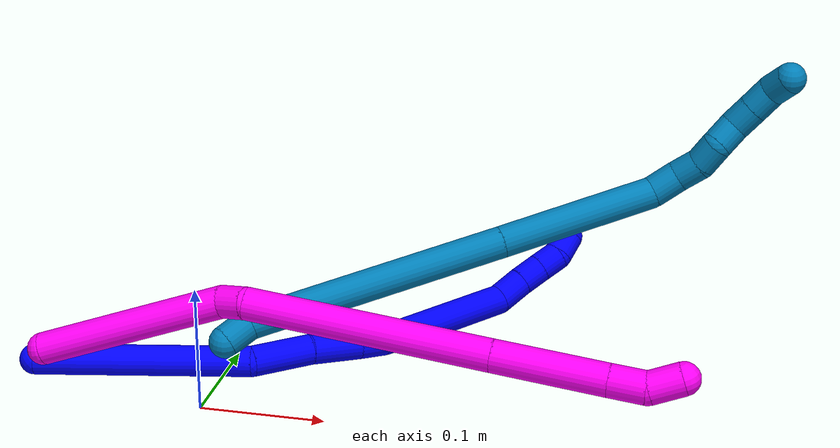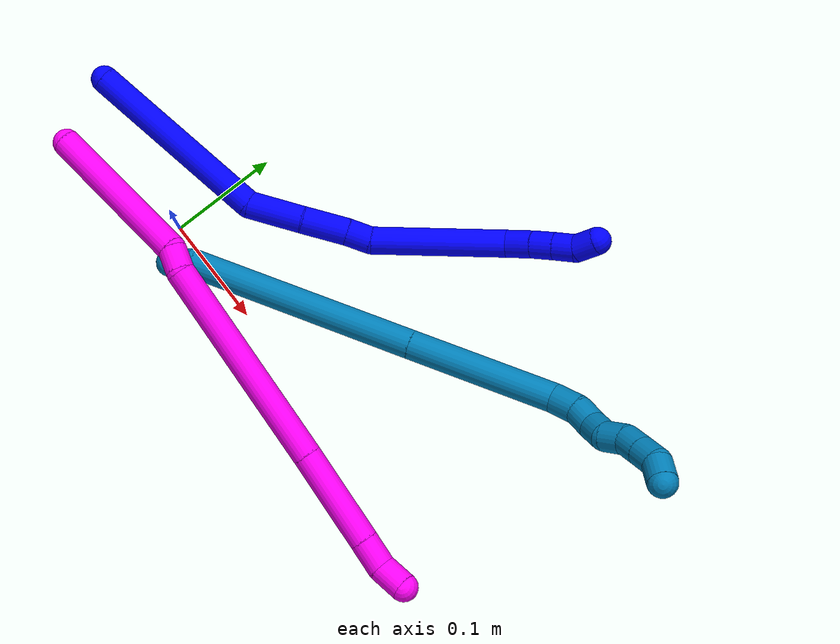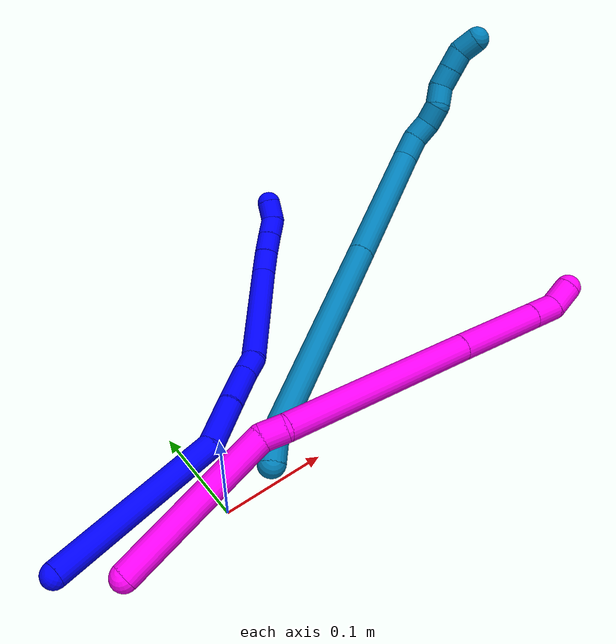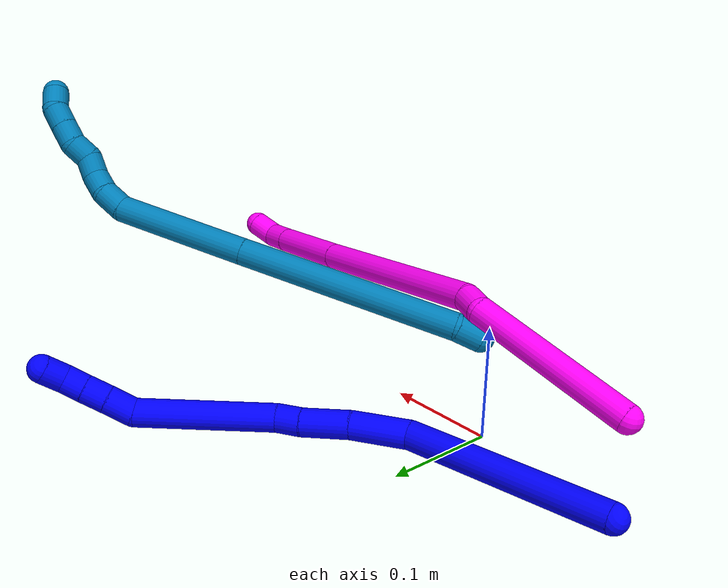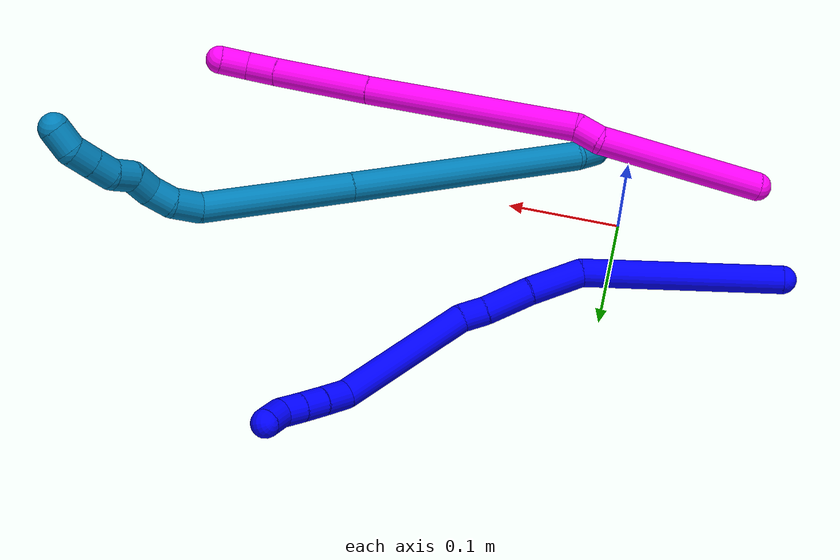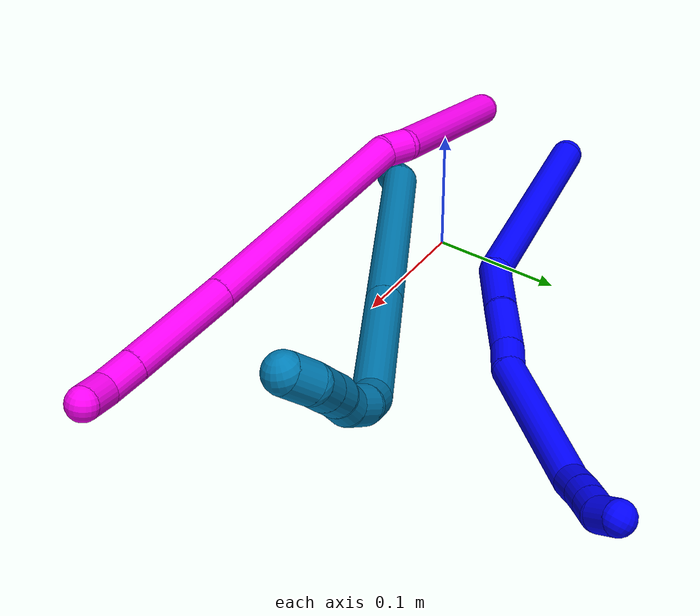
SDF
<sdf version="1.7">
 <world name="default">
  <model name="photoneo_s_sensor">
   <static>1</static>
   <pose>0 0 2 1.57079 1.57079 3.14159</pose>
   <link name="link">
    <inertial><mass>0.1</mass></inertial>
    <sensor name="sensor" type="depth">
     <update_rate>30</update_rate>
     <camera>
      <horizontal_fov>1.22</horizontal_fov>
      <image><width>1920</width><height>1200</height><format>B8G8R8</format></image>
      <clip><near>0.1</near><far>2</far></clip>
      <depth_camera><output>points</output></depth_camera>
     </camera>
     <plugin name="camera_plugin" filename="libgazebo_ros_depth_camera.so">
      <baseline>0.2</baseline>
      <alwaysOn>1</alwaysOn>
      <updateRate>0.0</updateRate>
      <cameraName>camera_ir</cameraName>
      <imageTopicName>/camera/color/image_raw</imageTopicName>
      <cameraInfoTopicName>/camera/color/camera_info</cameraInfoTopicName>
      <depthImageTopicName>/camera/depth/image_raw</depthImageTopicName>
      <depthImageCameraInfoTopicName>/camera/depth/camera_info</depthImageCameraInfoTopicName>
      <pointCloudTopicName>/camera/depth/points</pointCloudTopicName>
      <frameName>fr_optical</frameName>
      <pointCloudCutoff>0.1</pointCloudCutoff>
      <pointCloudCutoffMax>2.0</pointCloudCutoffMax>
      <distortionK1>0</distortionK1>
      <distortionK2>0</distortionK2>
      <distortionK3>0</distortionK3>
      <distortionT1>0</distortionT1>
      <distortionT2>0</distortionT2>
      <CxPrime>0</CxPrime>
      <Cx>0</Cx>
      <Cy>0</Cy>
      <focalLength>0</focalLength>
      <hackBaseline>0</hackBaseline>
     </plugin>
    </sensor>
   </link>
  </model>
  <model name="bin">
   <static>1</static>
   <link name="bottom">
    <collision name="collision-bottom">
     <pose>0 0 -0.01 0 -0 0</pose>
     <geometry><box><size>0.8 0.6 0.02</size></box></geometry>
     <surface>
      <friction><ode><mu>100</mu><mu2>100</mu2></ode></friction>
      <contact><collide_bitmask>65535</collide_bitmask></contact>
     </surface>
    </collision>
   </link>
   <link name="west_wall">
    <collision name="collision-west_wall">
     <pose>-0.41 0 0.1 0 -0 0</pose>
     <geometry><box><size>0.02 0.6 0.2</size></box></geometry>
     <surface>
      <friction><ode><mu>100</mu><mu2>100</mu2></ode></friction>
      <contact><collide_bitmask>65535</collide_bitmask></contact>
     </surface>
    </collision>
   </link>
   <link name="east_wall">
    <collision name="collision-east_wall">
     <pose>0.41 0 0.1 0 -0 0</pose>
     <geometry><box><size>0.02 0.6 0.2</size></box></geometry>
     <surface>
      <friction><ode><mu>100</mu><mu2>100</mu2></ode></friction>
      <contact><collide_bitmask>65535</collide_bitmask></contact>
     </surface>
    </collision>
   </link>
   <link name="south_wall">
    <collision name="collision-south_wall">
     <pose>0 -0.31 0.1 0 -0 0</pose>
     <geometry><box><size>0.8 0.02 0.2</size></box></geometry>
     <surface>
      <friction><ode><mu>100</mu><mu2>100</mu2></ode></friction>
      <contact><collide_bitmask>65535</collide_bitmask></contact>
     </surface>
    </collision>
   </link>
   <link name="north_wall">
    <collision name="collision-north_wall">
     <pose>0 0.31 0.1 0 -0 0</pose>
     <geometry><box><size>0.8 0.02 0.2</size></box></geometry>
     <surface>
      <friction><ode><mu>100</mu><mu2>100</mu2></ode></friction>
      <contact><collide_bitmask>65535</collide_bitmask></contact>
     </surface>
    </collision>
   </link>
  </model>
  <model name="1">
   <static>0</static>
   <link name="1">
    <collision name="collision-cylinder-e_1_1_4">
     <pose>0.042503 0.049941 0.058399 -0.707487 0.505242 -0.190072</pose>
     <geometry><cylinder><radius>0.0125</radius><length>0.175625</length></cylinder></geometry>
     <surface>
      <friction><ode><mu>1.16</mu><mu2>1.16</mu2><slip1>0</slip1><slip2>0</slip2></ode></friction>
      <contact><ode><kp>1e+06</kp><kd>1</kd><max_vel>0</max_vel><min_depth>0.001</min_depth></ode></contact>
     </surface>
    </collision>
    <visual name="visual-cylinder-e_1_1_4">
     <pose>0.042503 0.049941 0.058399 -0.707487 0.505242 -0.190072</pose>
     <geometry><cylinder><radius>0.0125</radius><length>0.175625</length></cylinder></geometry>
     <material><ambient>0 0 1 1</ambient></material>
    </visual>
    <collision name="collision-cylinder-e_2_4_5">
     <pose>0.105161 0.108243 0.129117 -0.596309 0.934554 -0.307659</pose>
     <geometry><cylinder><radius>0.0125</radius><length>0.050116</length></cylinder></geometry>
     <surface>
      <friction><ode><mu>1.16</mu><mu2>1.16</mu2><slip1>0</slip1><slip2>0</slip2></ode></friction>
      <contact><ode><kp>1e+06</kp><kd>1</kd><max_vel>0</max_vel><min_depth>0.001</min_depth></ode></contact>
     </surface>
    </collision>
    <visual name="visual-cylinder-e_2_4_5">
     <pose>0.105161 0.108243 0.129117 -0.596309 0.934554 -0.307659</pose>
     <geometry><cylinder><radius>0.0125</radius><length>0.050116</length></cylinder></geometry>
     <material><ambient>0 0 1 1</ambient></material>
    </visual>
    <collision name="collision-cylinder-e_3_5_6">
     <pose>0.142167 0.121653 0.153163 -0.406555 0.922423 -0.204158</pose>
     <geometry><cylinder><radius>0.0125</radius><length>0.042284</length></cylinder></geometry>
     <surface>
      <friction><ode><mu>1.16</mu><mu2>1.16</mu2><slip1>0</slip1><slip2>0</slip2></ode></friction>
      <contact><ode><kp>1e+06</kp><kd>1</kd><max_vel>0</max_vel><min_depth>0.001</min_depth></ode></contact>
     </surface>
    </collision>
    <visual name="visual-cylinder-e_3_5_6">
     <pose>0.142167 0.121653 0.153163 -0.406555 0.922423 -0.204158</pose>
     <geometry><cylinder><radius>0.0125</radius><length>0.042284</length></cylinder></geometry>
     <material><ambient>0 0 1 1</ambient></material>
    </visual>
    <collision name="collision-cylinder-e_4_6_7">
     <pose>0.167612 0.130767 0.171015 -0.585884 0.86318 -0.276053</pose>
     <geometry><cylinder><radius>0.0125</radius><length>0.022617</length></cylinder></geometry>
     <surface>
      <friction><ode><mu>1.16</mu><mu2>1.16</mu2><slip1>0</slip1><slip2>0</slip2></ode></friction>
      <contact><ode><kp>1e+06</kp><kd>1</kd><max_vel>0</max_vel><min_depth>0.001</min_depth></ode></contact>
     </surface>
    </collision>
    <visual name="visual-cylinder-e_4_6_7">
     <pose>0.167612 0.130767 0.171015 -0.585884 0.86318 -0.276053</pose>
     <geometry><cylinder><radius>0.0125</radius><length>0.022617</length></cylinder></geometry>
     <material><ambient>0 0 1 1</ambient></material>
    </visual>
    <collision name="collision-cylinder-e_5_7_8">
     <pose>0.232506 0.144296 0.198725 -0.41324 1.17433 -0.277187</pose>
     <geometry><cylinder><radius>0.0125</radius><length>0.12207</length></cylinder></geometry>
     <surface>
      <friction><ode><mu>1.16</mu><mu2>1.16</mu2><slip1>0</slip1><slip2>0</slip2></ode></friction>
      <contact><ode><kp>1e+06</kp><kd>1</kd><max_vel>0</max_vel><min_depth>0.001</min_depth></ode></contact>
     </surface>
    </collision>
    <visual name="visual-cylinder-e_5_7_8">
     <pose>0.232506 0.144296 0.198725 -0.41324 1.17433 -0.277187</pose>
     <geometry><cylinder><radius>0.0125</radius><length>0.12207</length></cylinder></geometry>
     <material><ambient>0 0 1 1</ambient></material>
    </visual>
    <collision name="collision-cylinder-e_6_8_9">
     <pose>0.299891 0.159806 0.221074 -1.44499 1.0682 -0.961157</pose>
     <geometry><cylinder><radius>0.0125</radius><length>0.025297</length></cylinder></geometry>
     <surface>
      <friction><ode><mu>1.16</mu><mu2>1.16</mu2><slip1>0</slip1><slip2>0</slip2></ode></friction>
      <contact><ode><kp>1e+06</kp><kd>1</kd><max_vel>0</max_vel><min_depth>0.001</min_depth></ode></contact>
     </surface>
    </collision>
    <visual name="visual-cylinder-e_6_8_9">
     <pose>0.299891 0.159806 0.221074 -1.44499 1.0682 -0.961157</pose>
     <geometry><cylinder><radius>0.0125</radius><length>0.025297</length></cylinder></geometry>
     <material><ambient>0 0 1 1</ambient></material>
    </visual>
    <collision name="collision-cylinder-e_7_9_10">
     <pose>0.320028 0.170877 0.223045 -1.33529 1.05195 -0.858476</pose>
     <geometry><cylinder><radius>0.0125</radius><length>0.020848</length></cylinder></geometry>
     <surface>
      <friction><ode><mu>1.16</mu><mu2>1.16</mu2><slip1>0</slip1><slip2>0</slip2></ode></friction>
      <contact><ode><kp>1e+06</kp><kd>1</kd><max_vel>0</max_vel><min_depth>0.001</min_depth></ode></contact>
     </surface>
    </collision>
    <visual name="visual-cylinder-e_7_9_10">
     <pose>0.320028 0.170877 0.223045 -1.33529 1.05195 -0.858476</pose>
     <geometry><cylinder><radius>0.0125</radius><length>0.020848</length></cylinder></geometry>
     <material><ambient>0 0 1 1</ambient></material>
    </visual>
    <collision name="collision-cylinder-e_8_10_11">
     <pose>0.337693 0.180948 0.225523 -1.32376 1.02748 -0.828411</pose>
     <geometry><cylinder><radius>0.0125</radius><length>0.020125</length></cylinder></geometry>
     <surface>
      <friction><ode><mu>1.16</mu><mu2>1.16</mu2><slip1>0</slip1><slip2>0</slip2></ode></friction>
      <contact><ode><kp>1e+06</kp><kd>1</kd><max_vel>0</max_vel><min_depth>0.001</min_depth></ode></contact>
     </surface>
    </collision>
    <visual name="visual-cylinder-e_8_10_11">
     <pose>0.337693 0.180948 0.225523 -1.32376 1.02748 -0.828411</pose>
     <geometry><cylinder><radius>0.0125</radius><length>0.020125</length></cylinder></geometry>
     <material><ambient>0 0 1 1</ambient></material>
    </visual>
    <collision name="collision-cylinder-e_9_11_2">
     <pose>0.355999 0.189137 0.224225 -2.25608 1.17394 -1.90303</pose>
     <geometry><cylinder><radius>0.0125</radius><length>0.021019</length></cylinder></geometry>
     <surface>
      <friction><ode><mu>1.16</mu><mu2>1.16</mu2><slip1>0</slip1><slip2>0</slip2></ode></friction>
      <contact><ode><kp>1e+06</kp><kd>1</kd><max_vel>0</max_vel><min_depth>0.001</min_depth></ode></contact>
     </surface>
    </collision>
    <visual name="visual-cylinder-e_9_11_2">
     <pose>0.355999 0.189137 0.224225 -2.25608 1.17394 -1.90303</pose>
     <geometry><cylinder><radius>0.0125</radius><length>0.021019</length></cylinder></geometry>
     <material><ambient>0 0 1 1</ambient></material>
    </visual>
    <collision name="collision-sphere-2">
     <pose>0.365692 0.192282 0.221654 0 -0 0</pose>
     <geometry><sphere><radius>0.0125</radius></sphere></geometry>
     <surface>
      <friction><ode><mu>1.16</mu><mu2>1.16</mu2><slip1>0</slip1><slip2>0</slip2></ode></friction>
      <contact><ode><kp>1e+06</kp><kd>1</kd><max_vel>0</max_vel><min_depth>0.001</min_depth></ode></contact>
     </surface>
    </collision>
    <visual name="visual-sphere-2">
     <pose>0.365692 0.192282 0.221654 0 -0 0</pose>
     <geometry><sphere><radius>0.0125</radius></sphere></geometry>
     <material><ambient>0 0 1 1</ambient></material>
    </visual>
    <collision name="collision-sphere-11">
     <pose>0.346306 0.185992 0.226795 0 -0 0</pose>
     <geometry><sphere><radius>0.0125</radius></sphere></geometry>
     <surface>
      <friction><ode><mu>1.16</mu><mu2>1.16</mu2><slip1>0</slip1><slip2>0</slip2></ode></friction>
      <contact><ode><kp>1e+06</kp><kd>1</kd><max_vel>0</max_vel><min_depth>0.001</min_depth></ode></contact>
     </surface>
    </collision>
    <visual name="visual-sphere-11">
     <pose>0.346306 0.185992 0.226795 0 -0 0</pose>
     <geometry><sphere><radius>0.0125</radius></sphere></geometry>
     <material><ambient>0 0 1 1</ambient></material>
    </visual>
    <collision name="collision-sphere-10">
     <pose>0.32908 0.175904 0.224251 0 -0 0</pose>
     <geometry><sphere><radius>0.0125</radius></sphere></geometry>
     <surface>
      <friction><ode><mu>1.16</mu><mu2>1.16</mu2><slip1>0</slip1><slip2>0</slip2></ode></friction>
      <contact><ode><kp>1e+06</kp><kd>1</kd><max_vel>0</max_vel><min_depth>0.001</min_depth></ode></contact>
     </surface>
    </collision>
    <visual name="visual-sphere-10">
     <pose>0.32908 0.175904 0.224251 0 -0 0</pose>
     <geometry><sphere><radius>0.0125</radius></sphere></geometry>
     <material><ambient>0 0 1 1</ambient></material>
    </visual>
    <collision name="collision-sphere-9">
     <pose>0.310975 0.165851 0.221839 0 -0 0</pose>
     <geometry><sphere><radius>0.0125</radius></sphere></geometry>
     <surface>
      <friction><ode><mu>1.16</mu><mu2>1.16</mu2><slip1>0</slip1><slip2>0</slip2></ode></friction>
      <contact><ode><kp>1e+06</kp><kd>1</kd><max_vel>0</max_vel><min_depth>0.001</min_depth></ode></contact>
     </surface>
    </collision>
    <visual name="visual-sphere-9">
     <pose>0.310975 0.165851 0.221839 0 -0 0</pose>
     <geometry><sphere><radius>0.0125</radius></sphere></geometry>
     <material><ambient>0 0 1 1</ambient></material>
    </visual>
    <collision name="collision-sphere-4">
     <pose>0.085006 0.099882 0.116798 0 -0 0</pose>
     <geometry><sphere><radius>0.0125</radius></sphere></geometry>
     <surface>
      <friction><ode><mu>1.16</mu><mu2>1.16</mu2><slip1>0</slip1><slip2>0</slip2></ode></friction>
      <contact><ode><kp>1e+06</kp><kd>1</kd><max_vel>0</max_vel><min_depth>0.001</min_depth></ode></contact>
     </surface>
    </collision>
    <visual name="visual-sphere-4">
     <pose>0.085006 0.099882 0.116798 0 -0 0</pose>
     <geometry><sphere><radius>0.0125</radius></sphere></geometry>
     <material><ambient>0 0 1 1</ambient></material>
    </visual>
    <collision name="collision-sphere-1">
     <geometry><sphere><radius>0.0125</radius></sphere></geometry>
     <surface>
      <friction><ode><mu>1.16</mu><mu2>1.16</mu2><slip1>0</slip1><slip2>0</slip2></ode></friction>
      <contact><ode><kp>1e+06</kp><kd>1</kd><max_vel>0</max_vel><min_depth>0.001</min_depth></ode></contact>
     </surface>
    </collision>
    <visual name="visual-sphere-1">
     <geometry><sphere><radius>0.0125</radius></sphere></geometry>
     <material><ambient>0 0 1 1</ambient></material>
    </visual>
    <collision name="collision-sphere-8">
     <pose>0.288806 0.153761 0.22031 0 -0 0</pose>
     <geometry><sphere><radius>0.0125</radius></sphere></geometry>
     <surface>
      <friction><ode><mu>1.16</mu><mu2>1.16</mu2><slip1>0</slip1><slip2>0</slip2></ode></friction>
      <contact><ode><kp>1e+06</kp><kd>1</kd><max_vel>0</max_vel><min_depth>0.001</min_depth></ode></contact>
     </surface>
    </collision>
    <visual name="visual-sphere-8">
     <pose>0.288806 0.153761 0.22031 0 -0 0</pose>
     <geometry><sphere><radius>0.0125</radius></sphere></geometry>
     <material><ambient>0 0 1 1</ambient></material>
    </visual>
    <collision name="collision-sphere-5">
     <pose>0.125315 0.116605 0.141436 0 -0 0</pose>
     <geometry><sphere><radius>0.0125</radius></sphere></geometry>
     <surface>
      <friction><ode><mu>1.16</mu><mu2>1.16</mu2><slip1>0</slip1><slip2>0</slip2></ode></friction>
      <contact><ode><kp>1e+06</kp><kd>1</kd><max_vel>0</max_vel><min_depth>0.001</min_depth></ode></contact>
     </surface>
    </collision>
    <visual name="visual-sphere-5">
     <pose>0.125315 0.116605 0.141436 0 -0 0</pose>
     <geometry><sphere><radius>0.0125</radius></sphere></geometry>
     <material><ambient>0 0 1 1</ambient></material>
    </visual>
    <collision name="collision-sphere-6">
     <pose>0.159018 0.126702 0.16489 0 -0 0</pose>
     <geometry><sphere><radius>0.0125</radius></sphere></geometry>
     <surface>
      <friction><ode><mu>1.16</mu><mu2>1.16</mu2><slip1>0</slip1><slip2>0</slip2></ode></friction>
      <contact><ode><kp>1e+06</kp><kd>1</kd><max_vel>0</max_vel><min_depth>0.001</min_depth></ode></contact>
     </surface>
    </collision>
    <visual name="visual-sphere-6">
     <pose>0.159018 0.126702 0.16489 0 -0 0</pose>
     <geometry><sphere><radius>0.0125</radius></sphere></geometry>
     <material><ambient>0 0 1 1</ambient></material>
    </visual>
    <collision name="collision-sphere-7">
     <pose>0.176206 0.134831 0.177139 0 -0 0</pose>
     <geometry><sphere><radius>0.0125</radius></sphere></geometry>
     <surface>
      <friction><ode><mu>1.16</mu><mu2>1.16</mu2><slip1>0</slip1><slip2>0</slip2></ode></friction>
      <contact><ode><kp>1e+06</kp><kd>1</kd><max_vel>0</max_vel><min_depth>0.001</min_depth></ode></contact>
     </surface>
    </collision>
    <visual name="visual-sphere-7">
     <pose>0.176206 0.134831 0.177139 0 -0 0</pose>
     <geometry><sphere><radius>0.0125</radius></sphere></geometry>
     <material><ambient>0 0 1 1</ambient></material>
    </visual>
    <inertial>
     <pose>0.158912 0.110267 0.141647 0 -0 0</pose>
     <mass>0.5</mass>
     <inertia>
      <ixx>0.000396</ixx>
      <ixy>0</ixy>
      <ixz>0</ixz>
      <iyy>0.000466</iyy>
      <iyz>0</iyz>
      <izz>-0.000667</izz>
     </inertia>
    </inertial>
   </link>
   <pose>-0.149363 0.029509 0.011775 2.37547 -0.190619 1.24458</pose>
  </model>
  <model name="9">
   <static>0</static>
   <link name="9">
    <collision name="collision-cylinder-e_1_1_4">
     <pose>0.005002 0.009695 0.00336 -1.2372 0.453613 -0.325627</pose>
     <geometry><cylinder><radius>0.0125</radius><length>0.022831</length></cylinder></geometry>
     <surface>
      <friction><ode><mu>1.16</mu><mu2>1.16</mu2><slip1>0</slip1><slip2>0</slip2></ode></friction>
      <contact><ode><kp>1e+06</kp><kd>1</kd><max_vel>0</max_vel><min_depth>0.001</min_depth></ode></contact>
     </surface>
    </collision>
    <visual name="visual-cylinder-e_1_1_4">
     <pose>0.005002 0.009695 0.00336 -1.2372 0.453613 -0.325627</pose>
     <geometry><cylinder><radius>0.0125</radius><length>0.022831</length></cylinder></geometry>
     <material><ambient>0 0.490196 0.709804 1</ambient></material>
    </visual>
    <collision name="collision-cylinder-e_2_4_5">
     <pose>0.083041 0.08957 0.021356 -1.36519 0.794706 -0.657595</pose>
     <geometry><cylinder><radius>0.0125</radius><length>0.204682</length></cylinder></geometry>
     <surface>
      <friction><ode><mu>1.16</mu><mu2>1.16</mu2><slip1>0</slip1><slip2>0</slip2></ode></friction>
      <contact><ode><kp>1e+06</kp><kd>1</kd><max_vel>0</max_vel><min_depth>0.001</min_depth></ode></contact>
     </surface>
    </collision>
    <visual name="visual-cylinder-e_2_4_5">
     <pose>0.083041 0.08957 0.021356 -1.36519 0.794706 -0.657595</pose>
     <geometry><cylinder><radius>0.0125</radius><length>0.204682</length></cylinder></geometry>
     <material><ambient>0 0.490196 0.709804 1</ambient></material>
    </visual>
    <collision name="collision-cylinder-e_3_5_6">
     <pose>0.201446 0.203568 0.045492 -1.35729 0.791288 -0.649768</pose>
     <geometry><cylinder><radius>0.0125</radius><length>0.127571</length></cylinder></geometry>
     <surface>
      <friction><ode><mu>1.16</mu><mu2>1.16</mu2><slip1>0</slip1><slip2>0</slip2></ode></friction>
      <contact><ode><kp>1e+06</kp><kd>1</kd><max_vel>0</max_vel><min_depth>0.001</min_depth></ode></contact>
     </surface>
    </collision>
    <visual name="visual-cylinder-e_3_5_6">
     <pose>0.201446 0.203568 0.045492 -1.35729 0.791288 -0.649768</pose>
     <geometry><cylinder><radius>0.0125</radius><length>0.127571</length></cylinder></geometry>
     <material><ambient>0 0.490196 0.709804 1</ambient></material>
    </visual>
    <collision name="collision-cylinder-e_4_6_7">
     <pose>0.254761 0.25431 0.060908 -0.863669 0.717539 -0.342251</pose>
     <geometry><cylinder><radius>0.0125</radius><length>0.024172</length></cylinder></geometry>
     <surface>
      <friction><ode><mu>1.16</mu><mu2>1.16</mu2><slip1>0</slip1><slip2>0</slip2></ode></friction>
      <contact><ode><kp>1e+06</kp><kd>1</kd><max_vel>0</max_vel><min_depth>0.001</min_depth></ode></contact>
     </surface>
    </collision>
    <visual name="visual-cylinder-e_4_6_7">
     <pose>0.254761 0.25431 0.060908 -0.863669 0.717539 -0.342251</pose>
     <geometry><cylinder><radius>0.0125</radius><length>0.024172</length></cylinder></geometry>
     <material><ambient>0 0.490196 0.709804 1</ambient></material>
    </visual>
    <collision name="collision-cylinder-e_5_7_8">
     <pose>0.270292 0.264135 0.073139 -0.430841 0.828976 -0.191957</pose>
     <geometry><cylinder><radius>0.0125</radius><length>0.020574</length></cylinder></geometry>
     <surface>
      <friction><ode><mu>1.16</mu><mu2>1.16</mu2><slip1>0</slip1><slip2>0</slip2></ode></friction>
      <contact><ode><kp>1e+06</kp><kd>1</kd><max_vel>0</max_vel><min_depth>0.001</min_depth></ode></contact>
     </surface>
    </collision>
    <visual name="visual-cylinder-e_5_7_8">
     <pose>0.270292 0.264135 0.073139 -0.430841 0.828976 -0.191957</pose>
     <geometry><cylinder><radius>0.0125</radius><length>0.020574</length></cylinder></geometry>
     <material><ambient>0 0.490196 0.709804 1</ambient></material>
    </visual>
    <collision name="collision-cylinder-e_6_8_9">
     <pose>0.282714 0.269888 0.087754 -0.330735 0.503794 -0.085851</pose>
     <geometry><cylinder><radius>0.0125</radius><length>0.020041</length></cylinder></geometry>
     <surface>
      <friction><ode><mu>1.16</mu><mu2>1.16</mu2><slip1>0</slip1><slip2>0</slip2></ode></friction>
      <contact><ode><kp>1e+06</kp><kd>1</kd><max_vel>0</max_vel><min_depth>0.001</min_depth></ode></contact>
     </surface>
    </collision>
    <visual name="visual-cylinder-e_6_8_9">
     <pose>0.282714 0.269888 0.087754 -0.330735 0.503794 -0.085851</pose>
     <geometry><cylinder><radius>0.0125</radius><length>0.020041</length></cylinder></geometry>
     <material><ambient>0 0.490196 0.709804 1</ambient></material>
    </visual>
    <collision name="collision-cylinder-e_7_9_10">
     <pose>0.291682 0.279898 0.101703 -0.902801 0.425249 -0.208558</pose>
     <geometry><cylinder><radius>0.0125</radius><length>0.020026</length></cylinder></geometry>
     <surface>
      <friction><ode><mu>1.16</mu><mu2>1.16</mu2><slip1>0</slip1><slip2>0</slip2></ode></friction>
      <contact><ode><kp>1e+06</kp><kd>1</kd><max_vel>0</max_vel><min_depth>0.001</min_depth></ode></contact>
     </surface>
    </collision>
    <visual name="visual-cylinder-e_7_9_10">
     <pose>0.291682 0.279898 0.101703 -0.902801 0.425249 -0.208558</pose>
     <geometry><cylinder><radius>0.0125</radius><length>0.020026</length></cylinder></geometry>
     <material><ambient>0 0.490196 0.709804 1</ambient></material>
    </visual>
    <collision name="collision-cylinder-e_8_10_11">
     <pose>0.301421 0.290754 0.114789 -0.461216 0.594081 -0.143487</pose>
     <geometry><cylinder><radius>0.0125</radius><length>0.02004</length></cylinder></geometry>
     <surface>
      <friction><ode><mu>1.16</mu><mu2>1.16</mu2><slip1>0</slip1><slip2>0</slip2></ode></friction>
      <contact><ode><kp>1e+06</kp><kd>1</kd><max_vel>0</max_vel><min_depth>0.001</min_depth></ode></contact>
     </surface>
    </collision>
    <visual name="visual-cylinder-e_8_10_11">
     <pose>0.301421 0.290754 0.114789 -0.461216 0.594081 -0.143487</pose>
     <geometry><cylinder><radius>0.0125</radius><length>0.02004</length></cylinder></geometry>
     <material><ambient>0 0.490196 0.709804 1</ambient></material>
    </visual>
    <collision name="collision-cylinder-e_9_11_12">
     <pose>0.312535 0.298034 0.129765 -0.443711 0.58295 -0.135144</pose>
     <geometry><cylinder><radius>0.0125</radius><length>0.020002</length></cylinder></geometry>
     <surface>
      <friction><ode><mu>1.16</mu><mu2>1.16</mu2><slip1>0</slip1><slip2>0</slip2></ode></friction>
      <contact><ode><kp>1e+06</kp><kd>1</kd><max_vel>0</max_vel><min_depth>0.001</min_depth></ode></contact>
     </surface>
    </collision>
    <visual name="visual-cylinder-e_9_11_12">
     <pose>0.312535 0.298034 0.129765 -0.443711 0.58295 -0.135144</pose>
     <geometry><cylinder><radius>0.0125</radius><length>0.020002</length></cylinder></geometry>
     <material><ambient>0 0.490196 0.709804 1</ambient></material>
    </visual>
    <collision name="collision-cylinder-e_10_12_2">
     <pose>0.324558 0.300538 0.144853 0.142079 0.707269 0.052525</pose>
     <geometry><cylinder><radius>0.0125</radius><length>0.02006</length></cylinder></geometry>
     <surface>
      <friction><ode><mu>1.16</mu><mu2>1.16</mu2><slip1>0</slip1><slip2>0</slip2></ode></friction>
      <contact><ode><kp>1e+06</kp><kd>1</kd><max_vel>0</max_vel><min_depth>0.001</min_depth></ode></contact>
     </surface>
    </collision>
    <visual name="visual-cylinder-e_10_12_2">
     <pose>0.324558 0.300538 0.144853 0.142079 0.707269 0.052525</pose>
     <geometry><cylinder><radius>0.0125</radius><length>0.02006</length></cylinder></geometry>
     <material><ambient>0 0.490196 0.709804 1</ambient></material>
    </visual>
    <collision name="collision-sphere-2">
     <pose>0.331075 0.299459 0.152401 0 -0 0</pose>
     <geometry><sphere><radius>0.0125</radius></sphere></geometry>
     <surface>
      <friction><ode><mu>1.16</mu><mu2>1.16</mu2><slip1>0</slip1><slip2>0</slip2></ode></friction>
      <contact><ode><kp>1e+06</kp><kd>1</kd><max_vel>0</max_vel><min_depth>0.001</min_depth></ode></contact>
     </surface>
    </collision>
    <visual name="visual-sphere-2">
     <pose>0.331075 0.299459 0.152401 0 -0 0</pose>
     <geometry><sphere><radius>0.0125</radius></sphere></geometry>
     <material><ambient>0 0.490196 0.709804 1</ambient></material>
    </visual>
    <collision name="collision-sphere-12">
     <pose>0.318041 0.301618 0.137306 0 -0 0</pose>
     <geometry><sphere><radius>0.0125</radius></sphere></geometry>
     <surface>
      <friction><ode><mu>1.16</mu><mu2>1.16</mu2><slip1>0</slip1><slip2>0</slip2></ode></friction>
      <contact><ode><kp>1e+06</kp><kd>1</kd><max_vel>0</max_vel><min_depth>0.001</min_depth></ode></contact>
     </surface>
    </collision>
    <visual name="visual-sphere-12">
     <pose>0.318041 0.301618 0.137306 0 -0 0</pose>
     <geometry><sphere><radius>0.0125</radius></sphere></geometry>
     <material><ambient>0 0.490196 0.709804 1</ambient></material>
    </visual>
    <collision name="collision-sphere-11">
     <pose>0.30703 0.294449 0.122224 0 -0 0</pose>
     <geometry><sphere><radius>0.0125</radius></sphere></geometry>
     <surface>
      <friction><ode><mu>1.16</mu><mu2>1.16</mu2><slip1>0</slip1><slip2>0</slip2></ode></friction>
      <contact><ode><kp>1e+06</kp><kd>1</kd><max_vel>0</max_vel><min_depth>0.001</min_depth></ode></contact>
     </surface>
    </collision>
    <visual name="visual-sphere-11">
     <pose>0.30703 0.294449 0.122224 0 -0 0</pose>
     <geometry><sphere><radius>0.0125</radius></sphere></geometry>
     <material><ambient>0 0.490196 0.709804 1</ambient></material>
    </visual>
    <collision name="collision-sphere-10">
     <pose>0.295813 0.287059 0.107353 0 -0 0</pose>
     <geometry><sphere><radius>0.0125</radius></sphere></geometry>
     <surface>
      <friction><ode><mu>1.16</mu><mu2>1.16</mu2><slip1>0</slip1><slip2>0</slip2></ode></friction>
      <contact><ode><kp>1e+06</kp><kd>1</kd><max_vel>0</max_vel><min_depth>0.001</min_depth></ode></contact>
     </surface>
    </collision>
    <visual name="visual-sphere-10">
     <pose>0.295813 0.287059 0.107353 0 -0 0</pose>
     <geometry><sphere><radius>0.0125</radius></sphere></geometry>
     <material><ambient>0 0.490196 0.709804 1</ambient></material>
    </visual>
    <collision name="collision-sphere-9">
     <pose>0.287551 0.272737 0.096054 0 -0 0</pose>
     <geometry><sphere><radius>0.0125</radius></sphere></geometry>
     <surface>
      <friction><ode><mu>1.16</mu><mu2>1.16</mu2><slip1>0</slip1><slip2>0</slip2></ode></friction>
      <contact><ode><kp>1e+06</kp><kd>1</kd><max_vel>0</max_vel><min_depth>0.001</min_depth></ode></contact>
     </surface>
    </collision>
    <visual name="visual-sphere-9">
     <pose>0.287551 0.272737 0.096054 0 -0 0</pose>
     <geometry><sphere><radius>0.0125</radius></sphere></geometry>
     <material><ambient>0 0.490196 0.709804 1</ambient></material>
    </visual>
    <collision name="collision-sphere-4">
     <pose>0.010005 0.019391 0.00672 0 -0 0</pose>
     <geometry><sphere><radius>0.0125</radius></sphere></geometry>
     <surface>
      <friction><ode><mu>1.16</mu><mu2>1.16</mu2><slip1>0</slip1><slip2>0</slip2></ode></friction>
      <contact><ode><kp>1e+06</kp><kd>1</kd><max_vel>0</max_vel><min_depth>0.001</min_depth></ode></contact>
     </surface>
    </collision>
    <visual name="visual-sphere-4">
     <pose>0.010005 0.019391 0.00672 0 -0 0</pose>
     <geometry><sphere><radius>0.0125</radius></sphere></geometry>
     <material><ambient>0 0.490196 0.709804 1</ambient></material>
    </visual>
    <collision name="collision-sphere-1">
     <geometry><sphere><radius>0.0125</radius></sphere></geometry>
     <surface>
      <friction><ode><mu>1.16</mu><mu2>1.16</mu2><slip1>0</slip1><slip2>0</slip2></ode></friction>
      <contact><ode><kp>1e+06</kp><kd>1</kd><max_vel>0</max_vel><min_depth>0.001</min_depth></ode></contact>
     </surface>
    </collision>
    <visual name="visual-sphere-1">
     <geometry><sphere><radius>0.0125</radius></sphere></geometry>
     <material><ambient>0 0.490196 0.709804 1</ambient></material>
    </visual>
    <collision name="collision-sphere-8">
     <pose>0.277876 0.267038 0.079454 0 -0 0</pose>
     <geometry><sphere><radius>0.0125</radius></sphere></geometry>
     <surface>
      <friction><ode><mu>1.16</mu><mu2>1.16</mu2><slip1>0</slip1><slip2>0</slip2></ode></friction>
      <contact><ode><kp>1e+06</kp><kd>1</kd><max_vel>0</max_vel><min_depth>0.001</min_depth></ode></contact>
     </surface>
    </collision>
    <visual name="visual-sphere-8">
     <pose>0.277876 0.267038 0.079454 0 -0 0</pose>
     <geometry><sphere><radius>0.0125</radius></sphere></geometry>
     <material><ambient>0 0.490196 0.709804 1</ambient></material>
    </visual>
    <collision name="collision-sphere-5">
     <pose>0.156078 0.15975 0.035992 0 -0 0</pose>
     <geometry><sphere><radius>0.0125</radius></sphere></geometry>
     <surface>
      <friction><ode><mu>1.16</mu><mu2>1.16</mu2><slip1>0</slip1><slip2>0</slip2></ode></friction>
      <contact><ode><kp>1e+06</kp><kd>1</kd><max_vel>0</max_vel><min_depth>0.001</min_depth></ode></contact>
     </surface>
    </collision>
    <visual name="visual-sphere-5">
     <pose>0.156078 0.15975 0.035992 0 -0 0</pose>
     <geometry><sphere><radius>0.0125</radius></sphere></geometry>
     <material><ambient>0 0.490196 0.709804 1</ambient></material>
    </visual>
    <collision name="collision-sphere-6">
     <pose>0.246814 0.247387 0.054992 0 -0 0</pose>
     <geometry><sphere><radius>0.0125</radius></sphere></geometry>
     <surface>
      <friction><ode><mu>1.16</mu><mu2>1.16</mu2><slip1>0</slip1><slip2>0</slip2></ode></friction>
      <contact><ode><kp>1e+06</kp><kd>1</kd><max_vel>0</max_vel><min_depth>0.001</min_depth></ode></contact>
     </surface>
    </collision>
    <visual name="visual-sphere-6">
     <pose>0.246814 0.247387 0.054992 0 -0 0</pose>
     <geometry><sphere><radius>0.0125</radius></sphere></geometry>
     <material><ambient>0 0.490196 0.709804 1</ambient></material>
    </visual>
    <collision name="collision-sphere-7">
     <pose>0.262708 0.261233 0.066823 0 -0 0</pose>
     <geometry><sphere><radius>0.0125</radius></sphere></geometry>
     <surface>
      <friction><ode><mu>1.16</mu><mu2>1.16</mu2><slip1>0</slip1><slip2>0</slip2></ode></friction>
      <contact><ode><kp>1e+06</kp><kd>1</kd><max_vel>0</max_vel><min_depth>0.001</min_depth></ode></contact>
     </surface>
    </collision>
    <visual name="visual-sphere-7">
     <pose>0.262708 0.261233 0.066823 0 -0 0</pose>
     <geometry><sphere><radius>0.0125</radius></sphere></geometry>
     <material><ambient>0 0.490196 0.709804 1</ambient></material>
    </visual>
    <inertial>
     <pose>0.169678 0.169873 0.049651 0 -0 0</pose>
     <mass>0.5</mass>
     <inertia>
      <ixx>0.000149</ixx>
      <ixy>0</ixy>
      <ixz>0</ixz>
      <iyy>0.000177</iyy>
      <iyz>0</iyz>
      <izz>-0.001261</izz>
     </inertia>
    </inertial>
   </link>
   <pose>0.031803 -0.026359 0.072557 0.213186 0.106645 -0.187737</pose>
  </model>
  <model name="10">
   <static>0</static>
   <link name="10">
    <collision name="collision-cylinder-e_1_1_4">
     <pose>0.073259 0.013138 0.004103 -1.26811 1.38508 -1.09556</pose>
     <geometry><cylinder><radius>0.0125</radius><length>0.149081</length></cylinder></geometry>
     <surface>
      <friction><ode><mu>1.16</mu><mu2>1.16</mu2><slip1>0</slip1><slip2>0</slip2></ode></friction>
      <contact><ode><kp>1e+06</kp><kd>1</kd><max_vel>0</max_vel><min_depth>0.001</min_depth></ode></contact>
     </surface>
    </collision>
    <visual name="visual-cylinder-e_1_1_4">
     <pose>0.073259 0.013138 0.004103 -1.26811 1.38508 -1.09556</pose>
     <geometry><cylinder><radius>0.0125</radius><length>0.149081</length></cylinder></geometry>
     <material><ambient>1 0 0.964706 1</ambient></material>
    </visual>
    <collision name="collision-cylinder-e_2_4_5">
     <pose>0.157063 0.02388 0.007299 1.93245 1.33246 1.69961</pose>
     <geometry><cylinder><radius>0.0125</radius><length>0.021706</length></cylinder></geometry>
     <surface>
      <friction><ode><mu>1.16</mu><mu2>1.16</mu2><slip1>0</slip1><slip2>0</slip2></ode></friction>
      <contact><ode><kp>1e+06</kp><kd>1</kd><max_vel>0</max_vel><min_depth>0.001</min_depth></ode></contact>
     </surface>
    </collision>
    <visual name="visual-cylinder-e_2_4_5">
     <pose>0.157063 0.02388 0.007299 1.93245 1.33246 1.69961</pose>
     <geometry><cylinder><radius>0.0125</radius><length>0.021706</length></cylinder></geometry>
     <material><ambient>1 0 0.964706 1</ambient></material>
    </visual>
    <collision name="collision-cylinder-e_3_5_6">
     <pose>0.256325 0.021274 -0.026132 3.13515 1.21939 3.13237</pose>
     <geometry><cylinder><radius>0.0125</radius><length>0.188979</length></cylinder></geometry>
     <surface>
      <friction><ode><mu>1.16</mu><mu2>1.16</mu2><slip1>0</slip1><slip2>0</slip2></ode></friction>
      <contact><ode><kp>1e+06</kp><kd>1</kd><max_vel>0</max_vel><min_depth>0.001</min_depth></ode></contact>
     </surface>
    </collision>
    <visual name="visual-cylinder-e_3_5_6">
     <pose>0.256325 0.021274 -0.026132 3.13515 1.21939 3.13237</pose>
     <geometry><cylinder><radius>0.0125</radius><length>0.188979</length></cylinder></geometry>
     <material><ambient>1 0 0.964706 1</ambient></material>
    </visual>
    <collision name="collision-cylinder-e_4_6_7">
     <pose>0.3857 0.020376 -0.073082 3.09395 1.2295 3.07413</pose>
     <geometry><cylinder><radius>0.0125</radius><length>0.086298</length></cylinder></geometry>
     <surface>
      <friction><ode><mu>1.16</mu><mu2>1.16</mu2><slip1>0</slip1><slip2>0</slip2></ode></friction>
      <contact><ode><kp>1e+06</kp><kd>1</kd><max_vel>0</max_vel><min_depth>0.001</min_depth></ode></contact>
     </surface>
    </collision>
    <visual name="visual-cylinder-e_4_6_7">
     <pose>0.3857 0.020376 -0.073082 3.09395 1.2295 3.07413</pose>
     <geometry><cylinder><radius>0.0125</radius><length>0.086298</length></cylinder></geometry>
     <material><ambient>1 0 0.964706 1</ambient></material>
    </visual>
    <collision name="collision-cylinder-e_5_7_8">
     <pose>0.439533 0.019345 -0.091982 3.06496 1.24247 3.03458</pose>
     <geometry><cylinder><radius>0.0125</radius><length>0.027832</length></cylinder></geometry>
     <surface>
      <friction><ode><mu>1.16</mu><mu2>1.16</mu2><slip1>0</slip1><slip2>0</slip2></ode></friction>
      <contact><ode><kp>1e+06</kp><kd>1</kd><max_vel>0</max_vel><min_depth>0.001</min_depth></ode></contact>
     </surface>
    </collision>
    <visual name="visual-cylinder-e_5_7_8">
     <pose>0.439533 0.019345 -0.091982 3.06496 1.24247 3.03458</pose>
     <geometry><cylinder><radius>0.0125</radius><length>0.027832</length></cylinder></geometry>
     <material><ambient>1 0 0.964706 1</ambient></material>
    </visual>
    <collision name="collision-cylinder-e_6_8_2">
     <pose>0.465333 0.02225 -0.095851 -1.38661 1.31481 -1.14065</pose>
     <geometry><cylinder><radius>0.0125</radius><length>0.026104</length></cylinder></geometry>
     <surface>
      <friction><ode><mu>1.16</mu><mu2>1.16</mu2><slip1>0</slip1><slip2>0</slip2></ode></friction>
      <contact><ode><kp>1e+06</kp><kd>1</kd><max_vel>0</max_vel><min_depth>0.001</min_depth></ode></contact>
     </surface>
    </collision>
    <visual name="visual-cylinder-e_6_8_2">
     <pose>0.465333 0.02225 -0.095851 -1.38661 1.31481 -1.14065</pose>
     <geometry><cylinder><radius>0.0125</radius><length>0.026104</length></cylinder></geometry>
     <material><ambient>1 0 0.964706 1</ambient></material>
    </visual>
    <collision name="collision-sphere-2">
     <pose>0.47796 0.025499 -0.095245 0 -0 0</pose>
     <geometry><sphere><radius>0.0125</radius></sphere></geometry>
     <surface>
      <friction><ode><mu>1.16</mu><mu2>1.16</mu2><slip1>0</slip1><slip2>0</slip2></ode></friction>
      <contact><ode><kp>1e+06</kp><kd>1</kd><max_vel>0</max_vel><min_depth>0.001</min_depth></ode></contact>
     </surface>
    </collision>
    <visual name="visual-sphere-2">
     <pose>0.47796 0.025499 -0.095245 0 -0 0</pose>
     <geometry><sphere><radius>0.0125</radius></sphere></geometry>
     <material><ambient>1 0 0.964706 1</ambient></material>
    </visual>
    <collision name="collision-sphere-4">
     <pose>0.146517 0.026276 0.008206 0 -0 0</pose>
     <geometry><sphere><radius>0.0125</radius></sphere></geometry>
     <surface>
      <friction><ode><mu>1.16</mu><mu2>1.16</mu2><slip1>0</slip1><slip2>0</slip2></ode></friction>
      <contact><ode><kp>1e+06</kp><kd>1</kd><max_vel>0</max_vel><min_depth>0.001</min_depth></ode></contact>
     </surface>
    </collision>
    <visual name="visual-sphere-4">
     <pose>0.146517 0.026276 0.008206 0 -0 0</pose>
     <geometry><sphere><radius>0.0125</radius></sphere></geometry>
     <material><ambient>1 0 0.964706 1</ambient></material>
    </visual>
    <collision name="collision-sphere-1">
     <geometry><sphere><radius>0.0125</radius></sphere></geometry>
     <surface>
      <friction><ode><mu>1.16</mu><mu2>1.16</mu2><slip1>0</slip1><slip2>0</slip2></ode></friction>
      <contact><ode><kp>1e+06</kp><kd>1</kd><max_vel>0</max_vel><min_depth>0.001</min_depth></ode></contact>
     </surface>
    </collision>
    <visual name="visual-sphere-1">
     <geometry><sphere><radius>0.0125</radius></sphere></geometry>
     <material><ambient>1 0 0.964706 1</ambient></material>
    </visual>
    <collision name="collision-sphere-8">
     <pose>0.452706 0.019001 -0.096456 0 -0 0</pose>
     <geometry><sphere><radius>0.0125</radius></sphere></geometry>
     <surface>
      <friction><ode><mu>1.16</mu><mu2>1.16</mu2><slip1>0</slip1><slip2>0</slip2></ode></friction>
      <contact><ode><kp>1e+06</kp><kd>1</kd><max_vel>0</max_vel><min_depth>0.001</min_depth></ode></contact>
     </surface>
    </collision>
    <visual name="visual-sphere-8">
     <pose>0.452706 0.019001 -0.096456 0 -0 0</pose>
     <geometry><sphere><radius>0.0125</radius></sphere></geometry>
     <material><ambient>1 0 0.964706 1</ambient></material>
    </visual>
    <collision name="collision-sphere-5">
     <pose>0.16761 0.021483 0.006392 0 -0 0</pose>
     <geometry><sphere><radius>0.0125</radius></sphere></geometry>
     <surface>
      <friction><ode><mu>1.16</mu><mu2>1.16</mu2><slip1>0</slip1><slip2>0</slip2></ode></friction>
      <contact><ode><kp>1e+06</kp><kd>1</kd><max_vel>0</max_vel><min_depth>0.001</min_depth></ode></contact>
     </surface>
    </collision>
    <visual name="visual-sphere-5">
     <pose>0.16761 0.021483 0.006392 0 -0 0</pose>
     <geometry><sphere><radius>0.0125</radius></sphere></geometry>
     <material><ambient>1 0 0.964706 1</ambient></material>
    </visual>
    <collision name="collision-sphere-6">
     <pose>0.34504 0.021064 -0.058656 0 -0 0</pose>
     <geometry><sphere><radius>0.0125</radius></sphere></geometry>
     <surface>
      <friction><ode><mu>1.16</mu><mu2>1.16</mu2><slip1>0</slip1><slip2>0</slip2></ode></friction>
      <contact><ode><kp>1e+06</kp><kd>1</kd><max_vel>0</max_vel><min_depth>0.001</min_depth></ode></contact>
     </surface>
    </collision>
    <visual name="visual-sphere-6">
     <pose>0.34504 0.021064 -0.058656 0 -0 0</pose>
     <geometry><sphere><radius>0.0125</radius></sphere></geometry>
     <material><ambient>1 0 0.964706 1</ambient></material>
    </visual>
    <collision name="collision-sphere-7">
     <pose>0.426361 0.019689 -0.087508 0 -0 0</pose>
     <geometry><sphere><radius>0.0125</radius></sphere></geometry>
     <surface>
      <friction><ode><mu>1.16</mu><mu2>1.16</mu2><slip1>0</slip1><slip2>0</slip2></ode></friction>
      <contact><ode><kp>1e+06</kp><kd>1</kd><max_vel>0</max_vel><min_depth>0.001</min_depth></ode></contact>
     </surface>
    </collision>
    <visual name="visual-sphere-7">
     <pose>0.426361 0.019689 -0.087508 0 -0 0</pose>
     <geometry><sphere><radius>0.0125</radius></sphere></geometry>
     <material><ambient>1 0 0.964706 1</ambient></material>
    </visual>
    <inertial>
     <pose>0.240872 0.01875 -0.031074 0 -0 0</pose>
     <mass>0.5</mass>
     <inertia>
      <ixx>-0.000198</ixx>
      <ixy>0</ixy>
      <ixz>0</ixz>
      <iyy>0.000866</iyy>
      <iyz>0</iyz>
      <izz>-0.000928</izz>
     </inertia>
    </inertial>
   </link>
   <pose>-0.112366 -0.03338 0.054447 0.069157 -0.259695 -0.077633</pose>
  </model>
 </world>
</sdf>
